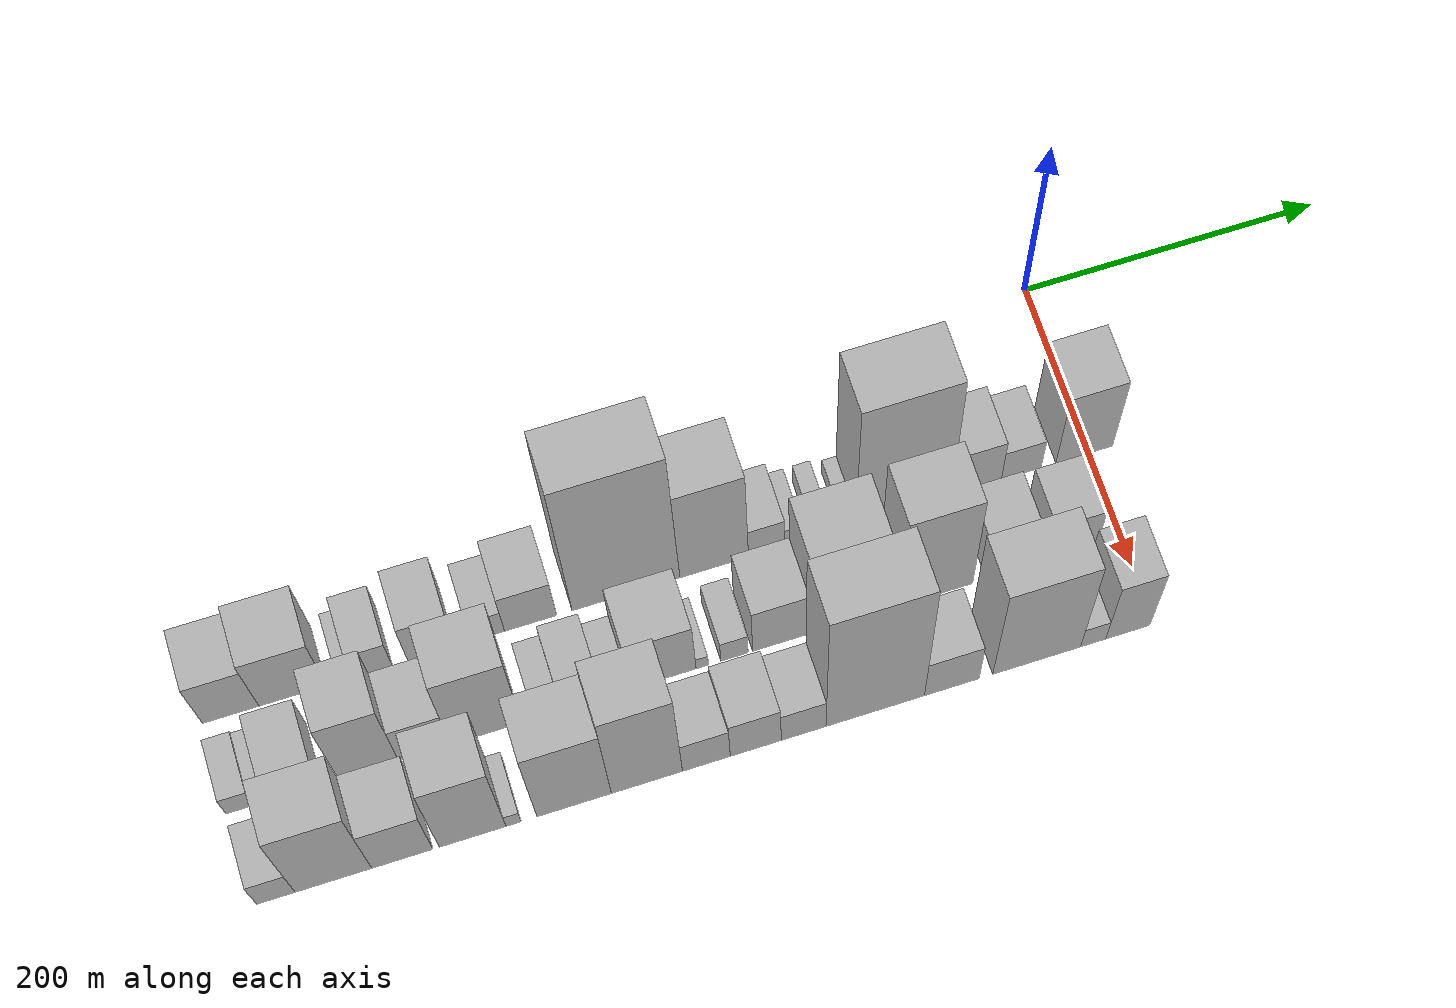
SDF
<sdf version="1.6">
 <world name="default">
  <model name="building_1">
   <static>1</static>
   <pose>100.0000 -562.0914 0 0.000000 0.000000 0.000000</pose>
   <link name="link">
    <pose>0 0 34.50 0 0 0</pose>
    <collision name="collision"><geometry><box><size>40.0000 35.8171 69.0000</size></box></geometry></collision>
    <visual name="visual">
     <cast_shadows>0</cast_shadows>
     <geometry><box><size>40.0000 35.8171 69.0000</size></box></geometry>
     <material>
      <script>
       <uri>model://HANNAS_wall/materials/scripts</uri>
       <uri>model://HANNAS_wall/materials/textures</uri>
       <name>vrc/HANNAS_wall</name>
      </script>
     </material>
    </visual>
   </link>
  </model>
  <model name="building_2">
   <static>1</static>
   <pose>100.0000 -522.6180 0 0.000000 0.000000 0.000000</pose>
   <link name="link">
    <pose>0 0 40.50 0 0 0</pose>
    <collision name="collision"><geometry><box><size>40.0000 43.1298 81.0000</size></box></geometry></collision>
    <visual name="visual">
     <cast_shadows>0</cast_shadows>
     <geometry><box><size>40.0000 43.1298 81.0000</size></box></geometry>
     <material>
      <script>
       <uri>model://HANNAS_wall/materials/scripts</uri>
       <uri>model://HANNAS_wall/materials/textures</uri>
       <name>vrc/HANNAS_wall</name>
      </script>
     </material>
    </visual>
   </link>
  </model>
  <model name="building_3">
   <static>1</static>
   <pose>100.0000 -488.5580 0 0.000000 0.000000 0.000000</pose>
   <link name="link">
    <pose>0 0 9.00 0 0 0</pose>
    <collision name="collision"><geometry><box><size>40.0000 8.9903 18.0000</size></box></geometry></collision>
    <visual name="visual">
     <cast_shadows>0</cast_shadows>
     <geometry><box><size>40.0000 8.9903 18.0000</size></box></geometry>
     <material>
      <script>
       <uri>model://HANNAS_wall/materials/scripts</uri>
       <uri>model://HANNAS_wall/materials/textures</uri>
       <name>vrc/HANNAS_wall</name>
      </script>
     </material>
    </visual>
   </link>
  </model>
  <model name="building_4">
   <static>1</static>
   <pose>100.0000 -471.5464 0 0.000000 0.000000 0.000000</pose>
   <link name="link">
    <pose>0 0 21.00 0 0 0</pose>
    <collision name="collision"><geometry><box><size>40.0000 25.0329 42.0000</size></box></geometry></collision>
    <visual name="visual">
     <cast_shadows>0</cast_shadows>
     <geometry><box><size>40.0000 25.0329 42.0000</size></box></geometry>
     <material>
      <script>
       <uri>model://HANNAS_wall/materials/scripts</uri>
       <uri>model://HANNAS_wall/materials/textures</uri>
       <name>vrc/HANNAS_wall</name>
      </script>
     </material>
    </visual>
   </link>
  </model>
  <model name="building_5">
   <static>1</static>
   <pose>100.0000 -433.6001 0 0.000000 0.000000 0.000000</pose>
   <link name="link">
    <pose>0 0 30.00 0 0 0</pose>
    <collision name="collision"><geometry><box><size>40.0000 30.8597 60.0000</size></box></geometry></collision>
    <visual name="visual">
     <cast_shadows>0</cast_shadows>
     <geometry><box><size>40.0000 30.8597 60.0000</size></box></geometry>
     <material>
      <script>
       <uri>model://HANNAS_wall/materials/scripts</uri>
       <uri>model://HANNAS_wall/materials/textures</uri>
       <name>vrc/HANNAS_wall</name>
      </script>
     </material>
    </visual>
   </link>
  </model>
  <model name="building_6">
   <static>1</static>
   <pose>100.0000 -397.3919 0 0.000000 0.000000 0.000000</pose>
   <link name="link">
    <pose>0 0 18.00 0 0 0</pose>
    <collision name="collision"><geometry><box><size>40.0000 21.5565 36.0000</size></box></geometry></collision>
    <visual name="visual">
     <cast_shadows>0</cast_shadows>
     <geometry><box><size>40.0000 21.5565 36.0000</size></box></geometry>
     <material>
      <script>
       <uri>model://HANNAS_wall/materials/scripts</uri>
       <uri>model://HANNAS_wall/materials/textures</uri>
       <name>vrc/HANNAS_wall</name>
      </script>
     </material>
    </visual>
   </link>
  </model>
  <model name="building_7">
   <static>1</static>
   <pose>100.0000 -369.7192 0 0.000000 0.000000 0.000000</pose>
   <link name="link">
    <pose>0 0 30.00 0 0 0</pose>
    <collision name="collision"><geometry><box><size>40.0000 33.7889 60.0000</size></box></geometry></collision>
    <visual name="visual">
     <cast_shadows>0</cast_shadows>
     <geometry><box><size>40.0000 33.7889 60.0000</size></box></geometry>
     <material>
      <script>
       <uri>model://HANNAS_wall/materials/scripts</uri>
       <uri>model://HANNAS_wall/materials/textures</uri>
       <name>vrc/HANNAS_wall</name>
      </script>
     </material>
    </visual>
   </link>
  </model>
  <model name="building_8">
   <static>1</static>
   <pose>100.0000 -307.5789 0 0.000000 0.000000 0.000000</pose>
   <link name="link">
    <pose>0 0 103.50 0 0 0</pose>
    <collision name="collision"><geometry><box><size>40.0000 70.4918 207.0000</size></box></geometry></collision>
    <visual name="visual">
     <cast_shadows>0</cast_shadows>
     <geometry><box><size>40.0000 70.4918 207.0000</size></box></geometry>
     <material>
      <script>
       <uri>model://HANNAS_wall/materials/scripts</uri>
       <uri>model://HANNAS_wall/materials/textures</uri>
       <name>vrc/HANNAS_wall</name>
      </script>
     </material>
    </visual>
   </link>
  </model>
  <model name="building_9">
   <static>1</static>
   <pose>100.0000 -249.7459 0 0.000000 0.000000 0.000000</pose>
   <link name="link">
    <pose>0 0 70.50 0 0 0</pose>
    <collision name="collision"><geometry><box><size>40.0000 45.1742 141.0000</size></box></geometry></collision>
    <visual name="visual">
     <cast_shadows>0</cast_shadows>
     <geometry><box><size>40.0000 45.1742 141.0000</size></box></geometry>
     <material>
      <script>
       <uri>model://HANNAS_wall/materials/scripts</uri>
       <uri>model://HANNAS_wall/materials/textures</uri>
       <name>vrc/HANNAS_wall</name>
      </script>
     </material>
    </visual>
   </link>
  </model>
  <model name="building_10">
   <static>1</static>
   <pose>100.0000 -215.1485 0 0.000000 0.000000 0.000000</pose>
   <link name="link">
    <pose>0 0 22.50 0 0 0</pose>
    <collision name="collision"><geometry><box><size>40.0000 24.0207 45.0000</size></box></geometry></collision>
    <visual name="visual">
     <cast_shadows>0</cast_shadows>
     <geometry><box><size>40.0000 24.0207 45.0000</size></box></geometry>
     <material>
      <script>
       <uri>model://HANNAS_wall/materials/scripts</uri>
       <uri>model://HANNAS_wall/materials/textures</uri>
       <name>vrc/HANNAS_wall</name>
      </script>
     </material>
    </visual>
   </link>
  </model>
  <model name="building_11">
   <static>1</static>
   <pose>100.0000 -197.2967 0 0.000000 0.000000 0.000000</pose>
   <link name="link">
    <pose>0 0 13.50 0 0 0</pose>
    <collision name="collision"><geometry><box><size>40.0000 11.6830 27.0000</size></box></geometry></collision>
    <visual name="visual">
     <cast_shadows>0</cast_shadows>
     <geometry><box><size>40.0000 11.6830 27.0000</size></box></geometry>
     <material>
      <script>
       <uri>model://HANNAS_wall/materials/scripts</uri>
       <uri>model://HANNAS_wall/materials/textures</uri>
       <name>vrc/HANNAS_wall</name>
      </script>
     </material>
    </visual>
   </link>
  </model>
  <model name="building_12">
   <static>1</static>
   <pose>100.0000 -179.6461 0 0.000000 0.000000 0.000000</pose>
   <link name="link">
    <pose>0 0 13.50 0 0 0</pose>
    <collision name="collision"><geometry><box><size>40.0000 11.6181 27.0000</size></box></geometry></collision>
    <visual name="visual">
     <cast_shadows>0</cast_shadows>
     <geometry><box><size>40.0000 11.6181 27.0000</size></box></geometry>
     <material>
      <script>
       <uri>model://HANNAS_wall/materials/scripts</uri>
       <uri>model://HANNAS_wall/materials/textures</uri>
       <name>vrc/HANNAS_wall</name>
      </script>
     </material>
    </visual>
   </link>
  </model>
  <model name="building_13">
   <static>1</static>
   <pose>100.0000 -161.0762 0 0.000000 0.000000 0.000000</pose>
   <link name="link">
    <pose>0 0 10.50 0 0 0</pose>
    <collision name="collision"><geometry><box><size>40.0000 9.5217 21.0000</size></box></geometry></collision>
    <visual name="visual">
     <cast_shadows>0</cast_shadows>
     <geometry><box><size>40.0000 9.5217 21.0000</size></box></geometry>
     <material>
      <script>
       <uri>model://HANNAS_wall/materials/scripts</uri>
       <uri>model://HANNAS_wall/materials/textures</uri>
       <name>vrc/HANNAS_wall</name>
      </script>
     </material>
    </visual>
   </link>
  </model>
  <model name="building_14">
   <static>1</static>
   <pose>100.0000 -124.3633 0 0.000000 0.000000 0.000000</pose>
   <link name="link">
    <pose>0 0 93.00 0 0 0</pose>
    <collision name="collision"><geometry><box><size>40.0000 63.9041 186.0000</size></box></geometry></collision>
    <visual name="visual">
     <cast_shadows>0</cast_shadows>
     <geometry><box><size>40.0000 63.9041 186.0000</size></box></geometry>
     <material>
      <script>
       <uri>model://HANNAS_wall/materials/scripts</uri>
       <uri>model://HANNAS_wall/materials/textures</uri>
       <name>vrc/HANNAS_wall</name>
      </script>
     </material>
    </visual>
   </link>
  </model>
  <model name="building_15">
   <static>1</static>
   <pose>100.0000 -75.5403 0 0.000000 0.000000 0.000000</pose>
   <link name="link">
    <pose>0 0 31.50 0 0 0</pose>
    <collision name="collision"><geometry><box><size>40.0000 33.7419 63.0000</size></box></geometry></collision>
    <visual name="visual">
     <cast_shadows>0</cast_shadows>
     <geometry><box><size>40.0000 33.7419 63.0000</size></box></geometry>
     <material>
      <script>
       <uri>model://HANNAS_wall/materials/scripts</uri>
       <uri>model://HANNAS_wall/materials/textures</uri>
       <name>vrc/HANNAS_wall</name>
      </script>
     </material>
    </visual>
   </link>
  </model>
  <model name="building_16">
   <static>1</static>
   <pose>100.0000 -45.2591 0 0.000000 0.000000 0.000000</pose>
   <link name="link">
    <pose>0 0 22.50 0 0 0</pose>
    <collision name="collision"><geometry><box><size>40.0000 26.8206 45.0000</size></box></geometry></collision>
    <visual name="visual">
     <cast_shadows>0</cast_shadows>
     <geometry><box><size>40.0000 26.8206 45.0000</size></box></geometry>
     <material>
      <script>
       <uri>model://HANNAS_wall/materials/scripts</uri>
       <uri>model://HANNAS_wall/materials/textures</uri>
       <name>vrc/HANNAS_wall</name>
      </script>
     </material>
    </visual>
   </link>
  </model>
  <model name="building_17">
   <static>1</static>
   <pose>100.0000 -2.6604 0 0.000000 0.000000 0.000000</pose>
   <link name="link">
    <pose>0 0 52.50 0 0 0</pose>
    <collision name="collision"><geometry><box><size>40.0000 38.3768 105.0000</size></box></geometry></collision>
    <visual name="visual">
     <cast_shadows>0</cast_shadows>
     <geometry><box><size>40.0000 38.3768 105.0000</size></box></geometry>
     <material>
      <script>
       <uri>model://HANNAS_wall/materials/scripts</uri>
       <uri>model://HANNAS_wall/materials/textures</uri>
       <name>vrc/HANNAS_wall</name>
      </script>
     </material>
    </visual>
   </link>
  </model>
  <model name="building_35">
   <static>1</static>
   <pose>160.0000 -571.2576 0 0.000000 0.000000 0.000000</pose>
   <link name="link">
    <pose>0 0 15.00 0 0 0</pose>
    <collision name="collision"><geometry><box><size>40.0000 17.4849 30.0000</size></box></geometry></collision>
    <visual name="visual">
     <cast_shadows>0</cast_shadows>
     <geometry><box><size>40.0000 17.4849 30.0000</size></box></geometry>
     <material>
      <script>
       <uri>model://HANNAS_wall/materials/scripts</uri>
       <uri>model://HANNAS_wall/materials/textures</uri>
       <name>vrc/HANNAS_wall</name>
      </script>
     </material>
    </visual>
   </link>
  </model>
  <model name="building_36">
   <static>1</static>
   <pose>160.0000 -557.1027 0 0.000000 0.000000 0.000000</pose>
   <link name="link">
    <pose>0 0 13.50 0 0 0</pose>
    <collision name="collision"><geometry><box><size>40.0000 10.8249 27.0000</size></box></geometry></collision>
    <visual name="visual">
     <cast_shadows>0</cast_shadows>
     <geometry><box><size>40.0000 10.8249 27.0000</size></box></geometry>
     <material>
      <script>
       <uri>model://HANNAS_wall/materials/scripts</uri>
       <uri>model://HANNAS_wall/materials/textures</uri>
       <name>vrc/HANNAS_wall</name>
      </script>
     </material>
    </visual>
   </link>
  </model>
  <model name="building_37">
   <static>1</static>
   <pose>160.0000 -535.5196 0 0.000000 0.000000 0.000000</pose>
   <link name="link">
    <pose>0 0 27.00 0 0 0</pose>
    <collision name="collision"><geometry><box><size>40.0000 32.3412 54.0000</size></box></geometry></collision>
    <visual name="visual">
     <cast_shadows>0</cast_shadows>
     <geometry><box><size>40.0000 32.3412 54.0000</size></box></geometry>
     <material>
      <script>
       <uri>model://HANNAS_wall/materials/scripts</uri>
       <uri>model://HANNAS_wall/materials/textures</uri>
       <name>vrc/HANNAS_wall</name>
      </script>
     </material>
    </visual>
   </link>
  </model>
  <model name="building_38">
   <static>1</static>
   <pose>160.0000 -490.2751 0 0.000000 0.000000 0.000000</pose>
   <link name="link">
    <pose>0 0 52.50 0 0 0</pose>
    <collision name="collision"><geometry><box><size>40.0000 38.1479 105.0000</size></box></geometry></collision>
    <visual name="visual">
     <cast_shadows>0</cast_shadows>
     <geometry><box><size>40.0000 38.1479 105.0000</size></box></geometry>
     <material>
      <script>
       <uri>model://HANNAS_wall/materials/scripts</uri>
       <uri>model://HANNAS_wall/materials/textures</uri>
       <name>vrc/HANNAS_wall</name>
      </script>
     </material>
    </visual>
   </link>
  </model>
  <model name="building_39">
   <static>1</static>
   <pose>160.0000 -454.6785 0 0.000000 0.000000 0.000000</pose>
   <link name="link">
    <pose>0 0 30.00 0 0 0</pose>
    <collision name="collision"><geometry><box><size>40.0000 33.0453 60.0000</size></box></geometry></collision>
    <visual name="visual">
     <cast_shadows>0</cast_shadows>
     <geometry><box><size>40.0000 33.0453 60.0000</size></box></geometry>
     <material>
      <script>
       <uri>model://HANNAS_wall/materials/scripts</uri>
       <uri>model://HANNAS_wall/materials/textures</uri>
       <name>vrc/HANNAS_wall</name>
      </script>
     </material>
    </visual>
   </link>
  </model>
  <model name="building_40">
   <static>1</static>
   <pose>160.0000 -415.4418 0 0.000000 0.000000 0.000000</pose>
   <link name="link">
    <pose>0 0 60.00 0 0 0</pose>
    <collision name="collision"><geometry><box><size>40.0000 45.4279 120.0000</size></box></geometry></collision>
    <visual name="visual">
     <cast_shadows>0</cast_shadows>
     <geometry><box><size>40.0000 45.4279 120.0000</size></box></geometry>
     <material>
      <script>
       <uri>model://HANNAS_wall/materials/scripts</uri>
       <uri>model://HANNAS_wall/materials/textures</uri>
       <name>vrc/HANNAS_wall</name>
      </script>
     </material>
    </visual>
   </link>
  </model>
  <model name="building_41">
   <static>1</static>
   <pose>160.0000 -376.0880 0 0.000000 0.000000 0.000000</pose>
   <link name="link">
    <pose>0 0 16.50 0 0 0</pose>
    <collision name="collision"><geometry><box><size>40.0000 17.2798 33.0000</size></box></geometry></collision>
    <visual name="visual">
     <cast_shadows>0</cast_shadows>
     <geometry><box><size>40.0000 17.2798 33.0000</size></box></geometry>
     <material>
      <script>
       <uri>model://HANNAS_wall/materials/scripts</uri>
       <uri>model://HANNAS_wall/materials/textures</uri>
       <name>vrc/HANNAS_wall</name>
      </script>
     </material>
    </visual>
   </link>
  </model>
  <model name="building_42">
   <static>1</static>
   <pose>160.0000 -354.3526 0 0.000000 0.000000 0.000000</pose>
   <link name="link">
    <pose>0 0 25.50 0 0 0</pose>
    <collision name="collision"><geometry><box><size>40.0000 26.1909 51.0000</size></box></geometry></collision>
    <visual name="visual">
     <cast_shadows>0</cast_shadows>
     <geometry><box><size>40.0000 26.1909 51.0000</size></box></geometry>
     <material>
      <script>
       <uri>model://HANNAS_wall/materials/scripts</uri>
       <uri>model://HANNAS_wall/materials/textures</uri>
       <name>vrc/HANNAS_wall</name>
      </script>
     </material>
    </visual>
   </link>
  </model>
  <model name="building_43">
   <static>1</static>
   <pose>160.0000 -332.3342 0 0.000000 0.000000 0.000000</pose>
   <link name="link">
    <pose>0 0 15.00 0 0 0</pose>
    <collision name="collision"><geometry><box><size>40.0000 17.8458 30.0000</size></box></geometry></collision>
    <visual name="visual">
     <cast_shadows>0</cast_shadows>
     <geometry><box><size>40.0000 17.8458 30.0000</size></box></geometry>
     <material>
      <script>
       <uri>model://HANNAS_wall/materials/scripts</uri>
       <uri>model://HANNAS_wall/materials/textures</uri>
       <name>vrc/HANNAS_wall</name>
      </script>
     </material>
    </visual>
   </link>
  </model>
  <model name="building_44">
   <static>1</static>
   <pose>160.0000 -301.8369 0 0.000000 0.000000 0.000000</pose>
   <link name="link">
    <pose>0 0 40.50 0 0 0</pose>
    <collision name="collision"><geometry><box><size>40.0000 43.1489 81.0000</size></box></geometry></collision>
    <visual name="visual">
     <cast_shadows>0</cast_shadows>
     <geometry><box><size>40.0000 43.1489 81.0000</size></box></geometry>
     <material>
      <script>
       <uri>model://HANNAS_wall/materials/scripts</uri>
       <uri>model://HANNAS_wall/materials/textures</uri>
       <name>vrc/HANNAS_wall</name>
      </script>
     </material>
    </visual>
   </link>
  </model>
  <model name="building_45">
   <static>1</static>
   <pose>160.0000 -276.2372 0 0.000000 0.000000 0.000000</pose>
   <link name="link">
    <pose>0 0 9.00 0 0 0</pose>
    <collision name="collision"><geometry><box><size>40.0000 8.0505 18.0000</size></box></geometry></collision>
    <visual name="visual">
     <cast_shadows>0</cast_shadows>
     <geometry><box><size>40.0000 8.0505 18.0000</size></box></geometry>
     <material>
      <script>
       <uri>model://HANNAS_wall/materials/scripts</uri>
       <uri>model://HANNAS_wall/materials/textures</uri>
       <name>vrc/HANNAS_wall</name>
      </script>
     </material>
    </visual>
   </link>
  </model>
  <model name="building_46">
   <static>1</static>
   <pose>160.0000 -255.3201 0 0.000000 0.000000 0.000000</pose>
   <link name="link">
    <pose>0 0 16.50 0 0 0</pose>
    <collision name="collision"><geometry><box><size>40.0000 17.7837 33.0000</size></box></geometry></collision>
    <visual name="visual">
     <cast_shadows>0</cast_shadows>
     <geometry><box><size>40.0000 17.7837 33.0000</size></box></geometry>
     <material>
      <script>
       <uri>model://HANNAS_wall/materials/scripts</uri>
       <uri>model://HANNAS_wall/materials/textures</uri>
       <name>vrc/HANNAS_wall</name>
      </script>
     </material>
    </visual>
   </link>
  </model>
  <model name="building_47">
   <static>1</static>
   <pose>160.0000 -225.0145 0 0.000000 0.000000 0.000000</pose>
   <link name="link">
    <pose>0 0 36.00 0 0 0</pose>
    <collision name="collision"><geometry><box><size>40.0000 36.8275 72.0000</size></box></geometry></collision>
    <visual name="visual">
     <cast_shadows>0</cast_shadows>
     <geometry><box><size>40.0000 36.8275 72.0000</size></box></geometry>
     <material>
      <script>
       <uri>model://HANNAS_wall/materials/scripts</uri>
       <uri>model://HANNAS_wall/materials/textures</uri>
       <name>vrc/HANNAS_wall</name>
      </script>
     </material>
    </visual>
   </link>
  </model>
  <model name="building_48">
   <static>1</static>
   <pose>160.0000 -181.3352 0 0.000000 0.000000 0.000000</pose>
   <link name="link">
    <pose>0 0 70.50 0 0 0</pose>
    <collision name="collision"><geometry><box><size>40.0000 50.5311 141.0000</size></box></geometry></collision>
    <visual name="visual">
     <cast_shadows>0</cast_shadows>
     <geometry><box><size>40.0000 50.5311 141.0000</size></box></geometry>
     <material>
      <script>
       <uri>model://HANNAS_wall/materials/scripts</uri>
       <uri>model://HANNAS_wall/materials/textures</uri>
       <name>vrc/HANNAS_wall</name>
      </script>
     </material>
    </visual>
   </link>
  </model>
  <model name="building_49">
   <static>1</static>
   <pose>160.0000 -151.0371 0 0.000000 0.000000 0.000000</pose>
   <link name="link">
    <pose>0 0 12.00 0 0 0</pose>
    <collision name="collision"><geometry><box><size>40.0000 10.0650 24.0000</size></box></geometry></collision>
    <visual name="visual">
     <cast_shadows>0</cast_shadows>
     <geometry><box><size>40.0000 10.0650 24.0000</size></box></geometry>
     <material>
      <script>
       <uri>model://HANNAS_wall/materials/scripts</uri>
       <uri>model://HANNAS_wall/materials/textures</uri>
       <name>vrc/HANNAS_wall</name>
      </script>
     </material>
    </visual>
   </link>
  </model>
  <model name="building_50">
   <static>1</static>
   <pose>160.0000 -122.3967 0 0.000000 0.000000 0.000000</pose>
   <link name="link">
    <pose>0 0 73.50 0 0 0</pose>
    <collision name="collision"><geometry><box><size>40.0000 47.2158 147.0000</size></box></geometry></collision>
    <visual name="visual">
     <cast_shadows>0</cast_shadows>
     <geometry><box><size>40.0000 47.2158 147.0000</size></box></geometry>
     <material>
      <script>
       <uri>model://HANNAS_wall/materials/scripts</uri>
       <uri>model://HANNAS_wall/materials/textures</uri>
       <name>vrc/HANNAS_wall</name>
      </script>
     </material>
    </visual>
   </link>
  </model>
  <model name="building_51">
   <static>1</static>
   <pose>160.0000 -72.8129 0 0.000000 0.000000 0.000000</pose>
   <link name="link">
    <pose>0 0 31.50 0 0 0</pose>
    <collision name="collision"><geometry><box><size>40.0000 33.9519 63.0000</size></box></geometry></collision>
    <visual name="visual">
     <cast_shadows>0</cast_shadows>
     <geometry><box><size>40.0000 33.9519 63.0000</size></box></geometry>
     <material>
      <script>
       <uri>model://HANNAS_wall/materials/scripts</uri>
       <uri>model://HANNAS_wall/materials/textures</uri>
       <name>vrc/HANNAS_wall</name>
      </script>
     </material>
    </visual>
   </link>
  </model>
  <model name="building_52">
   <static>1</static>
   <pose>160.0000 -31.7290 0 0.000000 0.000000 0.000000</pose>
   <link name="link">
    <pose>0 0 30.00 0 0 0</pose>
    <collision name="collision"><geometry><box><size>40.0000 32.2159 60.0000</size></box></geometry></collision>
    <visual name="visual">
     <cast_shadows>0</cast_shadows>
     <geometry><box><size>40.0000 32.2159 60.0000</size></box></geometry>
     <material>
      <script>
       <uri>model://HANNAS_wall/materials/scripts</uri>
       <uri>model://HANNAS_wall/materials/textures</uri>
       <name>vrc/HANNAS_wall</name>
      </script>
     </material>
    </visual>
   </link>
  </model>
  <model name="building_69">
   <static>1</static>
   <pose>220.0000 -564.0625 0 0.000000 0.000000 0.000000</pose>
   <link name="link">
    <pose>0 0 21.00 0 0 0</pose>
    <collision name="collision"><geometry><box><size>40.0000 23.8750 42.0000</size></box></geometry></collision>
    <visual name="visual">
     <cast_shadows>0</cast_shadows>
     <geometry><box><size>40.0000 23.8750 42.0000</size></box></geometry>
     <material>
      <script>
       <uri>model://HANNAS_wall/materials/scripts</uri>
       <uri>model://HANNAS_wall/materials/textures</uri>
       <name>vrc/HANNAS_wall</name>
      </script>
     </material>
    </visual>
   </link>
  </model>
  <model name="building_70">
   <static>1</static>
   <pose>220.0000 -528.2147 0 0.000000 0.000000 0.000000</pose>
   <link name="link">
    <pose>0 0 60.00 0 0 0</pose>
    <collision name="collision"><geometry><box><size>40.0000 47.8205 120.0000</size></box></geometry></collision>
    <visual name="visual">
     <cast_shadows>0</cast_shadows>
     <geometry><box><size>40.0000 47.8205 120.0000</size></box></geometry>
     <material>
      <script>
       <uri>model://HANNAS_wall/materials/scripts</uri>
       <uri>model://HANNAS_wall/materials/textures</uri>
       <name>vrc/HANNAS_wall</name>
      </script>
     </material>
    </visual>
   </link>
  </model>
  <model name="building_71">
   <static>1</static>
   <pose>220.0000 -485.1326 0 0.000000 0.000000 0.000000</pose>
   <link name="link">
    <pose>0 0 37.50 0 0 0</pose>
    <collision name="collision"><geometry><box><size>40.0000 38.3438 75.0000</size></box></geometry></collision>
    <visual name="visual">
     <cast_shadows>0</cast_shadows>
     <geometry><box><size>40.0000 38.3438 75.0000</size></box></geometry>
     <material>
      <script>
       <uri>model://HANNAS_wall/materials/scripts</uri>
       <uri>model://HANNAS_wall/materials/textures</uri>
       <name>vrc/HANNAS_wall</name>
      </script>
     </material>
    </visual>
   </link>
  </model>
  <model name="building_72">
   <static>1</static>
   <pose>220.0000 -440.9064 0 0.000000 0.000000 0.000000</pose>
   <link name="link">
    <pose>0 0 60.00 0 0 0</pose>
    <collision name="collision"><geometry><box><size>40.0000 42.1086 120.0000</size></box></geometry></collision>
    <visual name="visual">
     <cast_shadows>0</cast_shadows>
     <geometry><box><size>40.0000 42.1086 120.0000</size></box></geometry>
     <material>
      <script>
       <uri>model://HANNAS_wall/materials/scripts</uri>
       <uri>model://HANNAS_wall/materials/textures</uri>
       <name>vrc/HANNAS_wall</name>
      </script>
     </material>
    </visual>
   </link>
  </model>
  <model name="building_73">
   <static>1</static>
   <pose>220.0000 -415.0942 0 0.000000 0.000000 0.000000</pose>
   <link name="link">
    <pose>0 0 10.50 0 0 0</pose>
    <collision name="collision"><geometry><box><size>40.0000 9.5157 21.0000</size></box></geometry></collision>
    <visual name="visual">
     <cast_shadows>0</cast_shadows>
     <geometry><box><size>40.0000 9.5157 21.0000</size></box></geometry>
     <material>
      <script>
       <uri>model://HANNAS_wall/materials/scripts</uri>
       <uri>model://HANNAS_wall/materials/textures</uri>
       <name>vrc/HANNAS_wall</name>
      </script>
     </material>
    </visual>
   </link>
  </model>
  <model name="building_74">
   <static>1</static>
   <pose>220.0000 -376.6784 0 0.000000 0.000000 0.000000</pose>
   <link name="link">
    <pose>0 0 63.00 0 0 0</pose>
    <collision name="collision"><geometry><box><size>40.0000 47.3159 126.0000</size></box></geometry></collision>
    <visual name="visual">
     <cast_shadows>0</cast_shadows>
     <geometry><box><size>40.0000 47.3159 126.0000</size></box></geometry>
     <material>
      <script>
       <uri>model://HANNAS_wall/materials/scripts</uri>
       <uri>model://HANNAS_wall/materials/textures</uri>
       <name>vrc/HANNAS_wall</name>
      </script>
     </material>
    </visual>
   </link>
  </model>
  <model name="building_75">
   <static>1</static>
   <pose>220.0000 -330.2909 0 0.000000 0.000000 0.000000</pose>
   <link name="link">
    <pose>0 0 75.00 0 0 0</pose>
    <collision name="collision"><geometry><box><size>40.0000 45.4591 150.0000</size></box></geometry></collision>
    <visual name="visual">
     <cast_shadows>0</cast_shadows>
     <geometry><box><size>40.0000 45.4591 150.0000</size></box></geometry>
     <material>
      <script>
       <uri>model://HANNAS_wall/materials/scripts</uri>
       <uri>model://HANNAS_wall/materials/textures</uri>
       <name>vrc/HANNAS_wall</name>
      </script>
     </material>
    </visual>
   </link>
  </model>
  <model name="building_76">
   <static>1</static>
   <pose>220.0000 -292.2209 0 0.000000 0.000000 0.000000</pose>
   <link name="link">
    <pose>0 0 27.00 0 0 0</pose>
    <collision name="collision"><geometry><box><size>40.0000 30.6808 54.0000</size></box></geometry></collision>
    <visual name="visual">
     <cast_shadows>0</cast_shadows>
     <geometry><box><size>40.0000 30.6808 54.0000</size></box></geometry>
     <material>
      <script>
       <uri>model://HANNAS_wall/materials/scripts</uri>
       <uri>model://HANNAS_wall/materials/textures</uri>
       <name>vrc/HANNAS_wall</name>
      </script>
     </material>
    </visual>
   </link>
  </model>
  <model name="building_77">
   <static>1</static>
   <pose>220.0000 -260.5135 0 0.000000 0.000000 0.000000</pose>
   <link name="link">
    <pose>0 0 31.50 0 0 0</pose>
    <collision name="collision"><geometry><box><size>40.0000 32.7341 63.0000</size></box></geometry></collision>
    <visual name="visual">
     <cast_shadows>0</cast_shadows>
     <geometry><box><size>40.0000 32.7341 63.0000</size></box></geometry>
     <material>
      <script>
       <uri>model://HANNAS_wall/materials/scripts</uri>
       <uri>model://HANNAS_wall/materials/textures</uri>
       <name>vrc/HANNAS_wall</name>
      </script>
     </material>
    </visual>
   </link>
  </model>
  <model name="building_78">
   <static>1</static>
   <pose>220.0000 -229.6732 0 0.000000 0.000000 0.000000</pose>
   <link name="link">
    <pose>0 0 25.50 0 0 0</pose>
    <collision name="collision"><geometry><box><size>40.0000 28.9463 51.0000</size></box></geometry></collision>
    <visual name="visual">
     <cast_shadows>0</cast_shadows>
     <geometry><box><size>40.0000 28.9463 51.0000</size></box></geometry>
     <material>
      <script>
       <uri>model://HANNAS_wall/materials/scripts</uri>
       <uri>model://HANNAS_wall/materials/textures</uri>
       <name>vrc/HANNAS_wall</name>
      </script>
     </material>
    </visual>
   </link>
  </model>
  <model name="building_79">
   <static>1</static>
   <pose>220.0000 -183.1403 0 0.000000 0.000000 0.000000</pose>
   <link name="link">
    <pose>0 0 102.00 0 0 0</pose>
    <collision name="collision"><geometry><box><size>40.0000 64.1194 204.0000</size></box></geometry></collision>
    <visual name="visual">
     <cast_shadows>0</cast_shadows>
     <geometry><box><size>40.0000 64.1194 204.0000</size></box></geometry>
     <material>
      <script>
       <uri>model://HANNAS_wall/materials/scripts</uri>
       <uri>model://HANNAS_wall/materials/textures</uri>
       <name>vrc/HANNAS_wall</name>
      </script>
     </material>
    </visual>
   </link>
  </model>
  <model name="building_80">
   <static>1</static>
   <pose>220.0000 -133.2403 0 0.000000 0.000000 0.000000</pose>
   <link name="link">
    <pose>0 0 31.50 0 0 0</pose>
    <collision name="collision"><geometry><box><size>40.0000 35.6807 63.0000</size></box></geometry></collision>
    <visual name="visual">
     <cast_shadows>0</cast_shadows>
     <geometry><box><size>40.0000 35.6807 63.0000</size></box></geometry>
     <material>
      <script>
       <uri>model://HANNAS_wall/materials/scripts</uri>
       <uri>model://HANNAS_wall/materials/textures</uri>
       <name>vrc/HANNAS_wall</name>
      </script>
     </material>
    </visual>
   </link>
  </model>
  <model name="building_81">
   <static>1</static>
   <pose>220.0000 -77.4457 0 0.000000 0.000000 0.000000</pose>
   <link name="link">
    <pose>0 0 75.00 0 0 0</pose>
    <collision name="collision"><geometry><box><size>40.0000 57.9084 150.0000</size></box></geometry></collision>
    <visual name="visual">
     <cast_shadows>0</cast_shadows>
     <geometry><box><size>40.0000 57.9084 150.0000</size></box></geometry>
     <material>
      <script>
       <uri>model://HANNAS_wall/materials/scripts</uri>
       <uri>model://HANNAS_wall/materials/textures</uri>
       <name>vrc/HANNAS_wall</name>
      </script>
     </material>
    </visual>
   </link>
  </model>
  <model name="building_82">
   <static>1</static>
   <pose>220.0000 -40.1919 0 0.000000 0.000000 0.000000</pose>
   <link name="link">
    <pose>0 0 16.50 0 0 0</pose>
    <collision name="collision"><geometry><box><size>40.0000 16.5992 33.0000</size></box></geometry></collision>
    <visual name="visual">
     <cast_shadows>0</cast_shadows>
     <geometry><box><size>40.0000 16.5992 33.0000</size></box></geometry>
     <material>
      <script>
       <uri>model://HANNAS_wall/materials/scripts</uri>
       <uri>model://HANNAS_wall/materials/textures</uri>
       <name>vrc/HANNAS_wall</name>
      </script>
     </material>
    </visual>
   </link>
  </model>
  <model name="building_83">
   <static>1</static>
   <pose>220.0000 -17.2428 0 0.000000 0.000000 0.000000</pose>
   <link name="link">
    <pose>0 0 48.00 0 0 0</pose>
    <collision name="collision"><geometry><box><size>40.0000 29.2991 96.0000</size></box></geometry></collision>
    <visual name="visual">
     <cast_shadows>0</cast_shadows>
     <geometry><box><size>40.0000 29.2991 96.0000</size></box></geometry>
     <material>
      <script>
       <uri>model://HANNAS_wall/materials/scripts</uri>
       <uri>model://HANNAS_wall/materials/textures</uri>
       <name>vrc/HANNAS_wall</name>
      </script>
     </material>
    </visual>
   </link>
  </model>
 </world>
</sdf>
